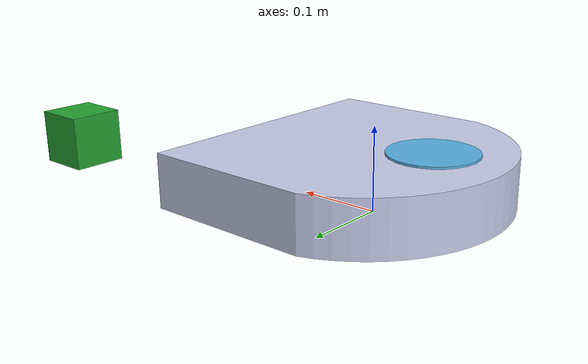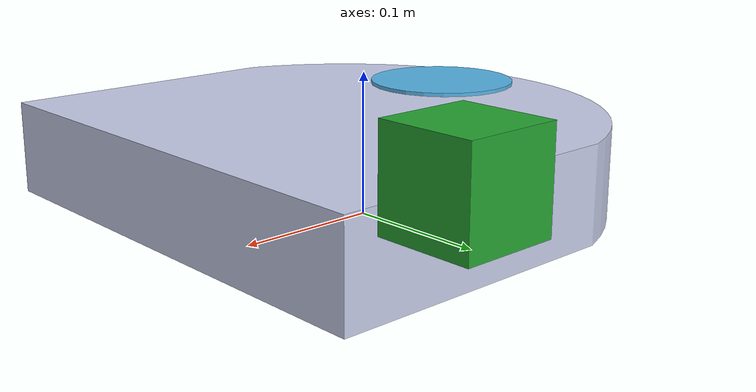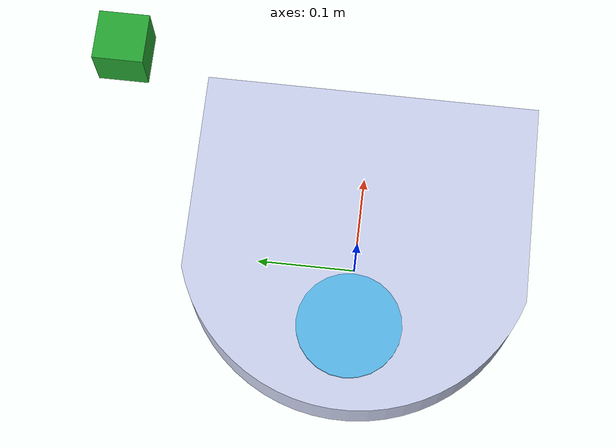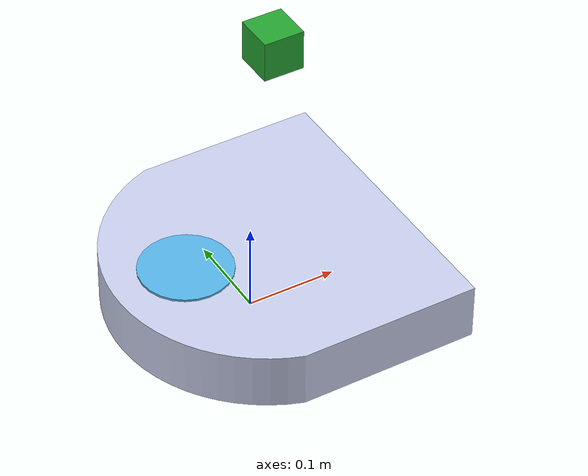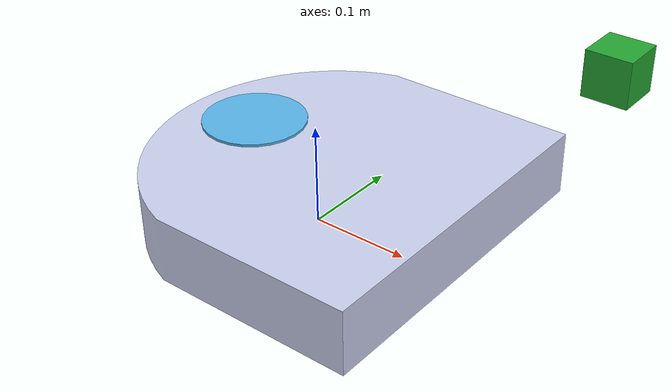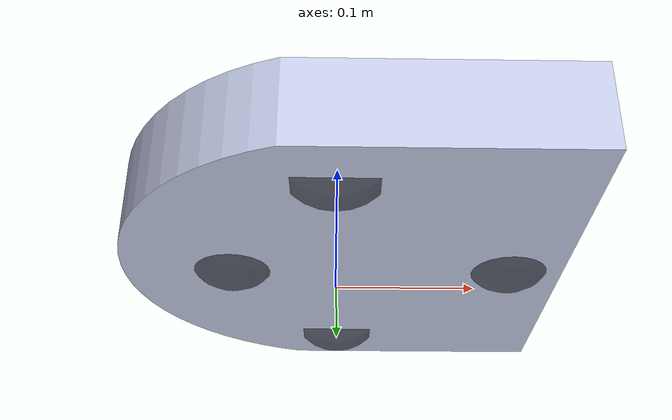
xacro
<?xml version='1.0'?>
<robot name="robot" xmlns:xacro="http://ros.org/wiki/xacro">
	<!-- body -->
    <xacro:property name="br" value="${6.5*inch}"/>
    <xacro:property name="bh" value="${2.5*inch}"/>

	<!-- wheel -->
    <xacro:property name="wr" value="${3.0/2.0 * inch}"/>
    <xacro:property name="wd" value="0.248"/>
    <xacro:property name="wt" value="${0.75 * inch}"/>

	<!-- caster -->
	<xacro:property name="cr" value="0.04"/>

    <xacro:include filename="$(find robot_learning)/urdf/common.xacro"/>
    <xacro:include filename="$(find robot_learning)/urdf/robot.gazebo"/>

    <link name="base_link"></link>

    <!-- base_footprint alias for ground plane projection -->
    <link name="base_footprint"></link>
    <joint name="base_footprint_joint" type="fixed">
        <origin xyz="0 0 0" rpy="0 0 0"/>
        <parent link="base_link"/>
        <child link="base_footprint"/>
    </joint>

    <joint name="chassis_joint" type="fixed">
        <origin xyz="${-3*inch} 0 ${0.5 * inch}" rpy="0 0 0" />
        <parent link="base_link"/>
        <child link="chassis" />
    </joint>

    <link name='chassis'>
        <inertial>
            <mass value="${9 * lb}"/>
            <origin xyz="0 0 0" rpy="0 0 0"/>
            <cylinder_inertia m="${9 * lb}" r="${br}" h="${bh}"/>
        </inertial>

        <visual>
            <origin
                xyz="0 0 0"
                rpy="0 0 0" />
            <geometry>
                <mesh filename="package://robot_learning/urdf/neato_body.stl" />
            </geometry>
            <material
                name="">
                <color
                    rgba="0.792156862745098 0.819607843137255 0.933333333333333 1" />
            </material>
        </visual>

        <collision>
            <origin
                xyz="0 0 0"
                rpy="0 0 0" />
            <geometry>
                <mesh filename="package://robot_learning/urdf/neato_body.stl" />
            </geometry>
            <material
                name="">
                <color
                    rgba="0.792156862745098 0.819607843137255 0.933333333333333 1" />
            </material>
        </collision>

    </link>

	<xacro:wheel wheel_prefix="left" wheel_mass="5" wheel_radius="${wr}" wheel_thickness="${wt}" parent="base_link">
        <origin xyz="0 ${wd/2} ${wr}" rpy="${-pi/2} 0 0"/>
    </xacro:wheel>

	<xacro:wheel wheel_prefix="right" wheel_mass="5" wheel_radius="${wr}" wheel_thickness="${wt}" parent="base_link">
        <origin xyz="0 ${-wd/2} ${wr}" rpy="${-pi/2} 0 0"/>
    </xacro:wheel>

    <link name="front_caster">
        <inertial>
            <mass value="0.1"/>
            <sphere radius="${3.0/2 * inch}"/>
            <sphere_inertia m="0.1" r="${3.0/2 * inch}"/>
        </inertial>
        <visual>
            <geometry>
                <sphere radius="${3.0/2 * inch}"/>
            </geometry>
            <material name="black">
                <color rgba="0 0 0 0.5"/>
            </material>
        </visual>
        <collision>
            <geometry>
                <sphere radius="${3.0/2 * inch}"/>
            </geometry>
        </collision>
    </link>

    <joint name="front_caster_joint" type="fixed">
        <origin xyz="${5.0*inch} 0 ${3.0/2*inch}" rpy="0 0 0"/>
        <parent link="base_link"/>
        <child link="front_caster"/>
    </joint>

    <link name="back_caster">
        <inertial>
            <mass value="0.1"/>
            <sphere radius="${3.0/2 * inch}"/>
            <sphere_inertia m="0.1" r="${3.0/2 * inch}"/>
        </inertial>
        <visual>
            <geometry>
                <sphere radius="${3.0/2 * inch}"/>
            </geometry>
            <material name="black">
                <color rgba="0 0 0 0.5"/>
            </material>
        </visual>
        <collision>
            <geometry>
                <sphere radius="${3.0/2 * inch}"/>
            </geometry>
        </collision>
    </link>

    <joint name="back_caster_joint" type="fixed">
        <origin xyz="${-3.0*inch} 0 ${3.0/2*inch}" rpy="0 0 0"/>
        <parent link="base_link"/>
        <child link="back_caster"/>
    </joint>

    <link name="camera">
        <inertial>
            <mass value="0.1"/>
            <inertia ixx="1e-6" ixy="0" ixz="0" iyy="1e-6" iyz="0" izz="1e-6"/>
        </inertial>
        <visual>
            <origin xyz="0 0 0" rpy="0 0 0"/>
            <geometry>
                <box size="0.05 0.05 0.05"/>
            </geometry>
        </visual>
        <collision>
            <origin xyz="0 0 0" rpy="0 0 0"/>
            <geometry>
                <box size="0.05 0.05 0.05"/>
            </geometry>
        </collision>
    </link>

    <joint name="camera_joint" type="fixed">
        <parent link="chassis"/>
        <child link="camera"/>
        <origin xyz="0.25 0.25 0.1" rpy="0 0 0"/>
    </joint>

	<link name="camera_optical"/>
	<joint name="camera_optical_joint" type="fixed">
		<origin xyz="0 0 0" rpy="${-pi/2} 0 ${-pi/2}"/>
        <parent link="camera"/>
        <child link="camera_optical"/>
	</joint>

    <link name="base_laser_link">
        <inertial>
            <mass value="0.1"/>
            <cylinder_inertia m="0.1" r="${2*inch}" h="${0.1*inch}"/>
        </inertial>
        <visual>
            <geometry>
                <cylinder length="${0.1*inch}" radius="${2*inch}"/>
            </geometry>
        </visual>
        <collision>
            <geometry>
                <cylinder length="${0.1*inch}" radius="${2*inch}"/>
            </geometry>
        </collision>
    </link>

    <joint name="laser_joint" type="fixed">
        <parent link="base_link"/>
        <child link="base_laser_link"/>
        <origin xyz="${-3*inch} 0 ${2.5 * inch + 0.8 * inch}" rpy="0 0 -3.14"/>
    </joint>

</robot>

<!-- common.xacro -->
<robot name="common" xmlns:xacro="http://ros.org/wiki/xacro">

	<!-- units begin -->
	<xacro:property name="inch" value="0.0254"/>
	<xacro:property name="lb" value="0.453592"/>
	<xacro:property name="deg" value="${pi/180.0}"/>
	<!-- units end -->

    <!-- inertial begin -->
    <xacro:macro name="cylinder_inertia" params="m r h">
		<inertia  ixx="${m*(3*r*r+h*h)/12}" ixy = "0" ixz = "0"
			iyy="${m*(3*r*r+h*h)/12}" iyz = "0"
			izz="${m*r*r/2}"
			/>
	</xacro:macro>
	<xacro:macro name="box_inertia" params="x y z mass">
		<inertia ixx="${0.0833333 * mass * (y*y + z*z)}" ixy="0.0" ixz="0.0"
			iyy="${0.0833333 * mass * (x*x + z*z)}" iyz="0.0"
			izz="${0.0833333 * mass * (x*x + y*y)}" />
	</xacro:macro>

    <xacro:macro name="sphere_inertia" params="r m">
		<inertia ixx="${0.4*m*r*r}" ixy="0.0" ixz="0.0"
			iyy="${0.4*m*r*r}" iyz="0.0"
			izz="${0.4*m*r*r}" />
    </xacro:macro>
    <!-- inertial end -->

	<xacro:macro name="wheel" params="wheel_prefix wheel_mass wheel_radius wheel_thickness parent *origin">
		<link name="${wheel_prefix}_wheel_link">
			<inertial>
				<mass value="${wheel_mass}"/>
				<cylinder_inertia m="${wheel_mass}" r="${wheel_radius}" h="${wheel_thickness}"/>
			</inertial>
			<visual>
				<origin xyz="0 0 0" rpy="0 0 0"/>
				<geometry>
					<cylinder length="${wheel_thickness}" radius="${wheel_radius}"/>
				</geometry>
				<material name="black">
					<color rgba="0 0 0 0.5"/>
				</material>
			</visual>
			<collision>
				<self_collide>false</self_collide>
				<origin xyz="0.0 0.0 0" rpy="0 0 0"/>
				<geometry>
					<cylinder length="${wheel_thickness}" radius="${wheel_radius}"/>
				</geometry>
			</collision>
		</link>

		<joint name="${wheel_prefix}_wheel_joint" type="continuous">
			<parent link="${parent}"/>
			<child link="${wheel_prefix}_wheel_link"/>
			<xacro:insert_block name="origin"/>
			<axis xyz="0 0 1"/>
			<limit effort="10000" velocity="1000"/>
			<dynamics damping="1.0" friction="1.0"/>
		</joint>

		<transmission name="${wheel_prefix}_wheel_transmission">
			<type>transmission_interface/SimpleTransmission</type>
			<actuator name="${wheel_prefix}_wheel_motor">
				<hardwareInterface>hardware_interface/VelocityJointInterface</hardwareInterface>
				<mechanicalReduction>1</mechanicalReduction>
			</actuator>
			<joint name="${wheel_prefix}_wheel_joint">
				<hardwareInterface>hardware_interface/VelocityJointInterface</hardwareInterface>
			</joint>
		</transmission>
	</xacro:macro>

</robot>
